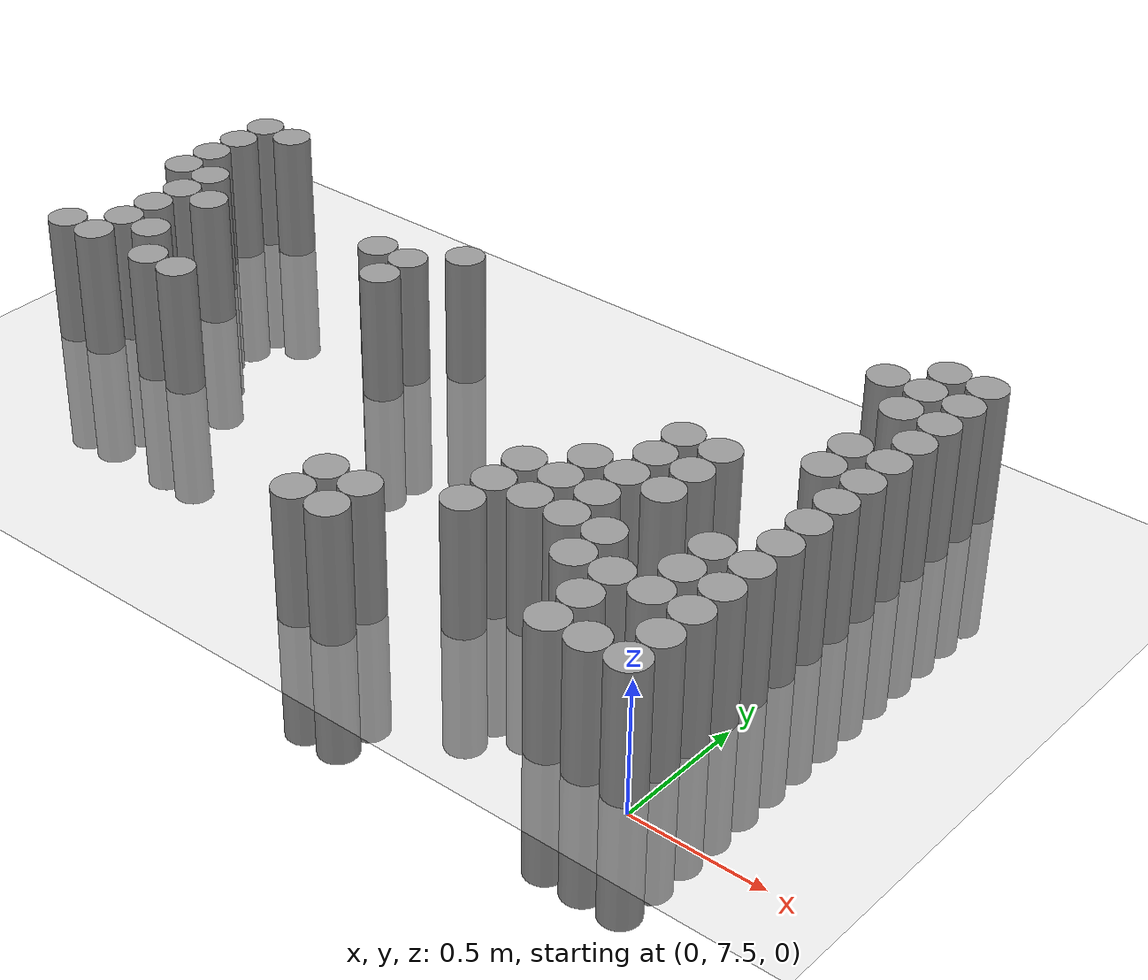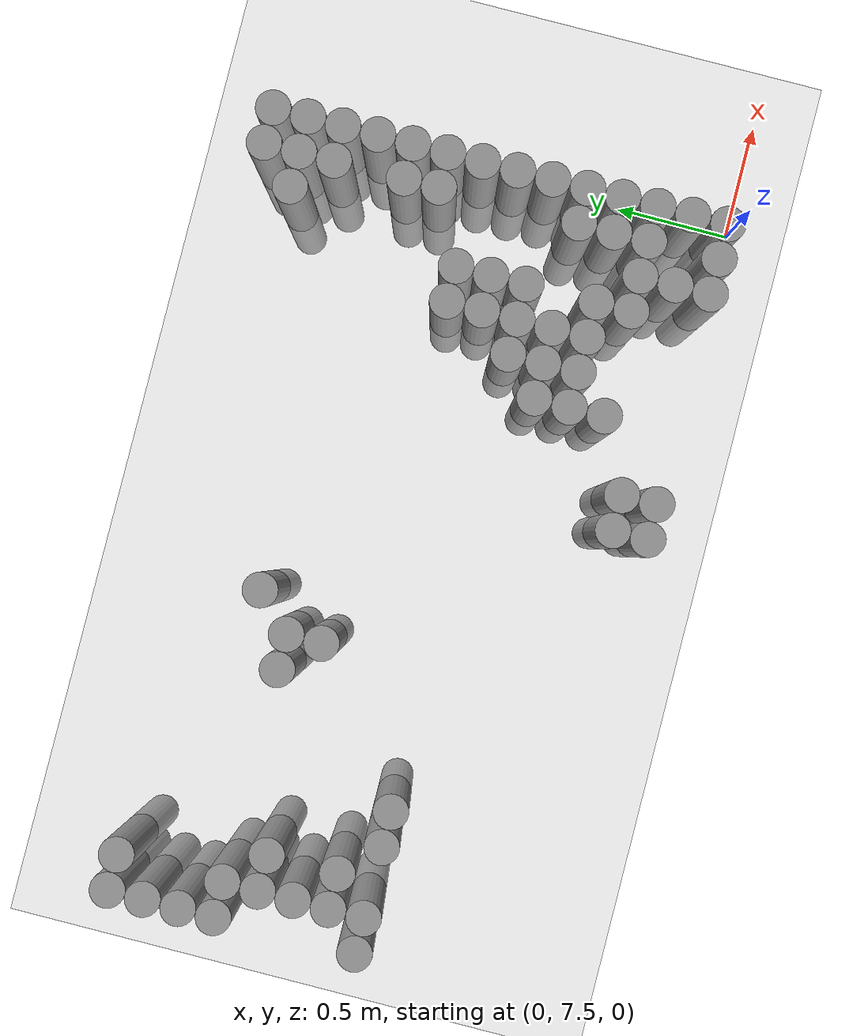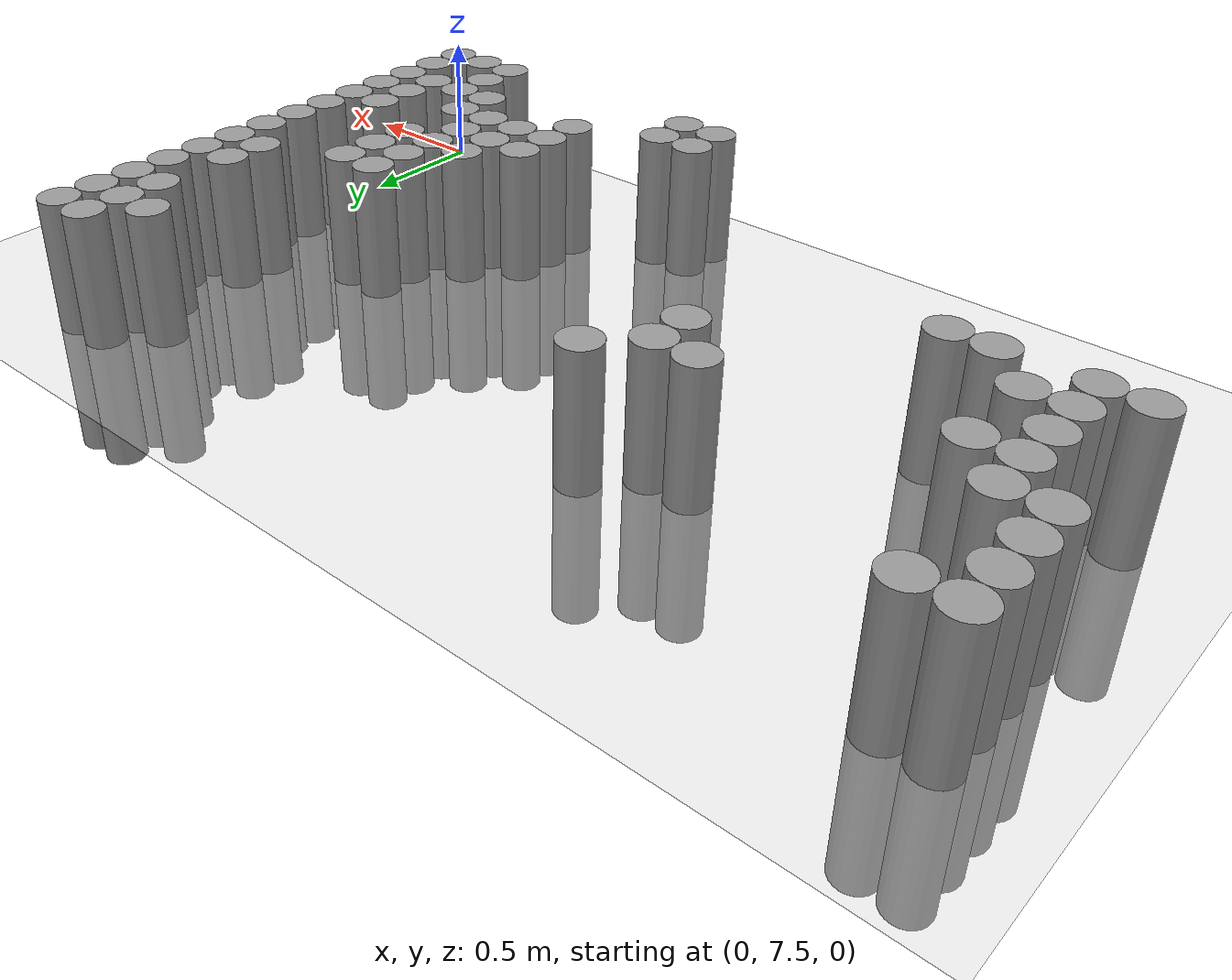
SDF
<sdf version="1.6">
 <world name="default">
  <model name="ground_plane">
   <static>1</static>
   <link name="link">
    <collision name="collision">
     <geometry><plane><normal>0 0 1</normal><size>100 100</size></plane></geometry>
     <surface><friction><ode><mu>100</mu><mu2>50</mu2></ode></friction></surface>
    </collision>
    <visual name="visual">
     <cast_shadows>0</cast_shadows>
     <geometry><plane><normal>0 0 1</normal><size>100 100</size></plane></geometry>
     <material>
      <script><uri>file://media/materials/scripts/gazebo.material</uri><name>Gazebo/Grey</name></script>
     </material>
    </visual>
   </link>
  </model>
  <model name="unit_cylinder_183">
   <pose>-3.375000 8.325000 0.000000 0.000000 0.000000 0.000000</pose>
   <link name="link">
    <inertial>
     <mass>1</mass>
     <inertia><ixx>0.145833</ixx><ixy>0</ixy><ixz>0</ixz><iyy>0.145833</iyy><iyz>0</iyz><izz>0.125</izz></inertia>
    </inertial>
    <collision name="collision">
     <geometry><cylinder><radius>0.075000</radius><length>1</length></cylinder></geometry>
    </collision>
    <visual name="visual">
     <geometry><cylinder><radius>0.075000</radius><length>1</length></cylinder></geometry>
     <material>
      <script><name>Gazebo/Grey</name><uri>file://media/materials/scripts/gazebo.material</uri></script>
     </material>
    </visual>
   </link>
  </model>
  <model name="unit_cylinder_184">
   <pose>-3.375000 8.925000 0.000000 0.000000 0.000000 0.000000</pose>
   <link name="link">
    <inertial>
     <mass>1</mass>
     <inertia><ixx>0.145833</ixx><ixy>0</ixy><ixz>0</ixz><iyy>0.145833</iyy><iyz>0</iyz><izz>0.125</izz></inertia>
    </inertial>
    <collision name="collision">
     <geometry><cylinder><radius>0.075000</radius><length>1</length></cylinder></geometry>
    </collision>
    <visual name="visual">
     <geometry><cylinder><radius>0.075000</radius><length>1</length></cylinder></geometry>
     <material>
      <script><name>Gazebo/Grey</name><uri>file://media/materials/scripts/gazebo.material</uri></script>
     </material>
    </visual>
   </link>
  </model>
  <model name="unit_cylinder_185">
   <pose>-3.375000 9.075000 0.000000 0.000000 0.000000 0.000000</pose>
   <link name="link">
    <inertial>
     <mass>1</mass>
     <inertia><ixx>0.145833</ixx><ixy>0</ixy><ixz>0</ixz><iyy>0.145833</iyy><iyz>0</iyz><izz>0.125</izz></inertia>
    </inertial>
    <collision name="collision">
     <geometry><cylinder><radius>0.075000</radius><length>1</length></cylinder></geometry>
    </collision>
    <visual name="visual">
     <geometry><cylinder><radius>0.075000</radius><length>1</length></cylinder></geometry>
     <material>
      <script><name>Gazebo/Grey</name><uri>file://media/materials/scripts/gazebo.material</uri></script>
     </material>
    </visual>
   </link>
  </model>
  <model name="unit_cylinder_186">
   <pose>-3.375000 9.225000 0.000000 0.000000 0.000000 0.000000</pose>
   <link name="link">
    <inertial>
     <mass>1</mass>
     <inertia><ixx>0.145833</ixx><ixy>0</ixy><ixz>0</ixz><iyy>0.145833</iyy><iyz>0</iyz><izz>0.125</izz></inertia>
    </inertial>
    <collision name="collision">
     <geometry><cylinder><radius>0.075000</radius><length>1</length></cylinder></geometry>
    </collision>
    <visual name="visual">
     <geometry><cylinder><radius>0.075000</radius><length>1</length></cylinder></geometry>
     <material>
      <script><name>Gazebo/Grey</name><uri>file://media/materials/scripts/gazebo.material</uri></script>
     </material>
    </visual>
   </link>
  </model>
  <model name="unit_cylinder_187">
   <pose>-3.375000 9.375000 0.000000 0.000000 0.000000 0.000000</pose>
   <link name="link">
    <inertial>
     <mass>1</mass>
     <inertia><ixx>0.145833</ixx><ixy>0</ixy><ixz>0</ixz><iyy>0.145833</iyy><iyz>0</iyz><izz>0.125</izz></inertia>
    </inertial>
    <collision name="collision">
     <geometry><cylinder><radius>0.075000</radius><length>1</length></cylinder></geometry>
    </collision>
    <visual name="visual">
     <geometry><cylinder><radius>0.075000</radius><length>1</length></cylinder></geometry>
     <material>
      <script><name>Gazebo/Grey</name><uri>file://media/materials/scripts/gazebo.material</uri></script>
     </material>
    </visual>
   </link>
  </model>
  <model name="unit_cylinder_195">
   <pose>-3.225000 8.325000 0.000000 0.000000 0.000000 0.000000</pose>
   <link name="link">
    <inertial>
     <mass>1</mass>
     <inertia><ixx>0.145833</ixx><ixy>0</ixy><ixz>0</ixz><iyy>0.145833</iyy><iyz>0</iyz><izz>0.125</izz></inertia>
    </inertial>
    <collision name="collision">
     <geometry><cylinder><radius>0.075000</radius><length>1</length></cylinder></geometry>
    </collision>
    <visual name="visual">
     <geometry><cylinder><radius>0.075000</radius><length>1</length></cylinder></geometry>
     <material>
      <script><name>Gazebo/Grey</name><uri>file://media/materials/scripts/gazebo.material</uri></script>
     </material>
    </visual>
   </link>
  </model>
  <model name="unit_cylinder_196">
   <pose>-3.225000 8.475000 0.000000 0.000000 0.000000 0.000000</pose>
   <link name="link">
    <inertial>
     <mass>1</mass>
     <inertia><ixx>0.145833</ixx><ixy>0</ixy><ixz>0</ixz><iyy>0.145833</iyy><iyz>0</iyz><izz>0.125</izz></inertia>
    </inertial>
    <collision name="collision">
     <geometry><cylinder><radius>0.075000</radius><length>1</length></cylinder></geometry>
    </collision>
    <visual name="visual">
     <geometry><cylinder><radius>0.075000</radius><length>1</length></cylinder></geometry>
     <material>
      <script><name>Gazebo/Grey</name><uri>file://media/materials/scripts/gazebo.material</uri></script>
     </material>
    </visual>
   </link>
  </model>
  <model name="unit_cylinder_197">
   <pose>-3.225000 8.625000 0.000000 0.000000 0.000000 0.000000</pose>
   <link name="link">
    <inertial>
     <mass>1</mass>
     <inertia><ixx>0.145833</ixx><ixy>0</ixy><ixz>0</ixz><iyy>0.145833</iyy><iyz>0</iyz><izz>0.125</izz></inertia>
    </inertial>
    <collision name="collision">
     <geometry><cylinder><radius>0.075000</radius><length>1</length></cylinder></geometry>
    </collision>
    <visual name="visual">
     <geometry><cylinder><radius>0.075000</radius><length>1</length></cylinder></geometry>
     <material>
      <script><name>Gazebo/Grey</name><uri>file://media/materials/scripts/gazebo.material</uri></script>
     </material>
    </visual>
   </link>
  </model>
  <model name="unit_cylinder_198">
   <pose>-3.225000 8.775000 0.000000 0.000000 0.000000 0.000000</pose>
   <link name="link">
    <inertial>
     <mass>1</mass>
     <inertia><ixx>0.145833</ixx><ixy>0</ixy><ixz>0</ixz><iyy>0.145833</iyy><iyz>0</iyz><izz>0.125</izz></inertia>
    </inertial>
    <collision name="collision">
     <geometry><cylinder><radius>0.075000</radius><length>1</length></cylinder></geometry>
    </collision>
    <visual name="visual">
     <geometry><cylinder><radius>0.075000</radius><length>1</length></cylinder></geometry>
     <material>
      <script><name>Gazebo/Grey</name><uri>file://media/materials/scripts/gazebo.material</uri></script>
     </material>
    </visual>
   </link>
  </model>
  <model name="unit_cylinder_199">
   <pose>-3.225000 8.925000 0.000000 0.000000 0.000000 0.000000</pose>
   <link name="link">
    <inertial>
     <mass>1</mass>
     <inertia><ixx>0.145833</ixx><ixy>0</ixy><ixz>0</ixz><iyy>0.145833</iyy><iyz>0</iyz><izz>0.125</izz></inertia>
    </inertial>
    <collision name="collision">
     <geometry><cylinder><radius>0.075000</radius><length>1</length></cylinder></geometry>
    </collision>
    <visual name="visual">
     <geometry><cylinder><radius>0.075000</radius><length>1</length></cylinder></geometry>
     <material>
      <script><name>Gazebo/Grey</name><uri>file://media/materials/scripts/gazebo.material</uri></script>
     </material>
    </visual>
   </link>
  </model>
  <model name="unit_cylinder_200">
   <pose>-3.225000 9.375000 0.000000 0.000000 0.000000 0.000000</pose>
   <link name="link">
    <inertial>
     <mass>1</mass>
     <inertia><ixx>0.145833</ixx><ixy>0</ixy><ixz>0</ixz><iyy>0.145833</iyy><iyz>0</iyz><izz>0.125</izz></inertia>
    </inertial>
    <collision name="collision">
     <geometry><cylinder><radius>0.075000</radius><length>1</length></cylinder></geometry>
    </collision>
    <visual name="visual">
     <geometry><cylinder><radius>0.075000</radius><length>1</length></cylinder></geometry>
     <material>
      <script><name>Gazebo/Grey</name><uri>file://media/materials/scripts/gazebo.material</uri></script>
     </material>
    </visual>
   </link>
  </model>
  <model name="unit_cylinder_209">
   <pose>-3.075000 8.475000 0.000000 0.000000 0.000000 0.000000</pose>
   <link name="link">
    <inertial>
     <mass>1</mass>
     <inertia><ixx>0.145833</ixx><ixy>0</ixy><ixz>0</ixz><iyy>0.145833</iyy><iyz>0</iyz><izz>0.125</izz></inertia>
    </inertial>
    <collision name="collision">
     <geometry><cylinder><radius>0.075000</radius><length>1</length></cylinder></geometry>
    </collision>
    <visual name="visual">
     <geometry><cylinder><radius>0.075000</radius><length>1</length></cylinder></geometry>
     <material>
      <script><name>Gazebo/Grey</name><uri>file://media/materials/scripts/gazebo.material</uri></script>
     </material>
    </visual>
   </link>
  </model>
  <model name="unit_cylinder_210">
   <pose>-3.075000 8.775000 0.000000 0.000000 0.000000 0.000000</pose>
   <link name="link">
    <inertial>
     <mass>1</mass>
     <inertia><ixx>0.145833</ixx><ixy>0</ixy><ixz>0</ixz><iyy>0.145833</iyy><iyz>0</iyz><izz>0.125</izz></inertia>
    </inertial>
    <collision name="collision">
     <geometry><cylinder><radius>0.075000</radius><length>1</length></cylinder></geometry>
    </collision>
    <visual name="visual">
     <geometry><cylinder><radius>0.075000</radius><length>1</length></cylinder></geometry>
     <material>
      <script><name>Gazebo/Grey</name><uri>file://media/materials/scripts/gazebo.material</uri></script>
     </material>
    </visual>
   </link>
  </model>
  <model name="unit_cylinder_217">
   <pose>-2.925000 8.325000 0.000000 0.000000 0.000000 0.000000</pose>
   <link name="link">
    <inertial>
     <mass>1</mass>
     <inertia><ixx>0.145833</ixx><ixy>0</ixy><ixz>0</ixz><iyy>0.145833</iyy><iyz>0</iyz><izz>0.125</izz></inertia>
    </inertial>
    <collision name="collision">
     <geometry><cylinder><radius>0.075000</radius><length>1</length></cylinder></geometry>
    </collision>
    <visual name="visual">
     <geometry><cylinder><radius>0.075000</radius><length>1</length></cylinder></geometry>
     <material>
      <script><name>Gazebo/Grey</name><uri>file://media/materials/scripts/gazebo.material</uri></script>
     </material>
    </visual>
   </link>
  </model>
  <model name="unit_cylinder_224">
   <pose>-2.775000 8.325000 0.000000 0.000000 0.000000 0.000000</pose>
   <link name="link">
    <inertial>
     <mass>1</mass>
     <inertia><ixx>0.145833</ixx><ixy>0</ixy><ixz>0</ixz><iyy>0.145833</iyy><iyz>0</iyz><izz>0.125</izz></inertia>
    </inertial>
    <collision name="collision">
     <geometry><cylinder><radius>0.075000</radius><length>1</length></cylinder></geometry>
    </collision>
    <visual name="visual">
     <geometry><cylinder><radius>0.075000</radius><length>1</length></cylinder></geometry>
     <material>
      <script><name>Gazebo/Grey</name><uri>file://media/materials/scripts/gazebo.material</uri></script>
     </material>
    </visual>
   </link>
  </model>
  <model name="unit_cylinder_235">
   <pose>-2.325000 8.925000 0.000000 0.000000 0.000000 0.000000</pose>
   <link name="link">
    <inertial>
     <mass>1</mass>
     <inertia><ixx>0.145833</ixx><ixy>0</ixy><ixz>0</ixz><iyy>0.145833</iyy><iyz>0</iyz><izz>0.125</izz></inertia>
    </inertial>
    <collision name="collision">
     <geometry><cylinder><radius>0.075000</radius><length>1</length></cylinder></geometry>
    </collision>
    <visual name="visual">
     <geometry><cylinder><radius>0.075000</radius><length>1</length></cylinder></geometry>
     <material>
      <script><name>Gazebo/Grey</name><uri>file://media/materials/scripts/gazebo.material</uri></script>
     </material>
    </visual>
   </link>
  </model>
  <model name="unit_cylinder_241">
   <pose>-2.175000 8.775000 0.000000 0.000000 0.000000 0.000000</pose>
   <link name="link">
    <inertial>
     <mass>1</mass>
     <inertia><ixx>0.145833</ixx><ixy>0</ixy><ixz>0</ixz><iyy>0.145833</iyy><iyz>0</iyz><izz>0.125</izz></inertia>
    </inertial>
    <collision name="collision">
     <geometry><cylinder><radius>0.075000</radius><length>1</length></cylinder></geometry>
    </collision>
    <visual name="visual">
     <geometry><cylinder><radius>0.075000</radius><length>1</length></cylinder></geometry>
     <material>
      <script><name>Gazebo/Grey</name><uri>file://media/materials/scripts/gazebo.material</uri></script>
     </material>
    </visual>
   </link>
  </model>
  <model name="unit_cylinder_242">
   <pose>-2.175000 8.925000 0.000000 0.000000 0.000000 0.000000</pose>
   <link name="link">
    <inertial>
     <mass>1</mass>
     <inertia><ixx>0.145833</ixx><ixy>0</ixy><ixz>0</ixz><iyy>0.145833</iyy><iyz>0</iyz><izz>0.125</izz></inertia>
    </inertial>
    <collision name="collision">
     <geometry><cylinder><radius>0.075000</radius><length>1</length></cylinder></geometry>
    </collision>
    <visual name="visual">
     <geometry><cylinder><radius>0.075000</radius><length>1</length></cylinder></geometry>
     <material>
      <script><name>Gazebo/Grey</name><uri>file://media/materials/scripts/gazebo.material</uri></script>
     </material>
    </visual>
   </link>
  </model>
  <model name="unit_cylinder_244">
   <pose>-2.025000 9.075000 0.000000 0.000000 0.000000 0.000000</pose>
   <link name="link">
    <inertial>
     <mass>1</mass>
     <inertia><ixx>0.145833</ixx><ixy>0</ixy><ixz>0</ixz><iyy>0.145833</iyy><iyz>0</iyz><izz>0.125</izz></inertia>
    </inertial>
    <collision name="collision">
     <geometry><cylinder><radius>0.075000</radius><length>1</length></cylinder></geometry>
    </collision>
    <visual name="visual">
     <geometry><cylinder><radius>0.075000</radius><length>1</length></cylinder></geometry>
     <material>
      <script><name>Gazebo/Grey</name><uri>file://media/materials/scripts/gazebo.material</uri></script>
     </material>
    </visual>
   </link>
  </model>
  <model name="unit_cylinder_251">
   <pose>-1.425000 7.575000 0.000000 0.000000 0.000000 0.000000</pose>
   <link name="link">
    <inertial>
     <mass>1</mass>
     <inertia><ixx>0.145833</ixx><ixy>0</ixy><ixz>0</ixz><iyy>0.145833</iyy><iyz>0</iyz><izz>0.125</izz></inertia>
    </inertial>
    <collision name="collision">
     <geometry><cylinder><radius>0.075000</radius><length>1</length></cylinder></geometry>
    </collision>
    <visual name="visual">
     <geometry><cylinder><radius>0.075000</radius><length>1</length></cylinder></geometry>
     <material>
      <script><name>Gazebo/Grey</name><uri>file://media/materials/scripts/gazebo.material</uri></script>
     </material>
    </visual>
   </link>
  </model>
  <model name="unit_cylinder_252">
   <pose>-1.425000 7.725000 0.000000 0.000000 0.000000 0.000000</pose>
   <link name="link">
    <inertial>
     <mass>1</mass>
     <inertia><ixx>0.145833</ixx><ixy>0</ixy><ixz>0</ixz><iyy>0.145833</iyy><iyz>0</iyz><izz>0.125</izz></inertia>
    </inertial>
    <collision name="collision">
     <geometry><cylinder><radius>0.075000</radius><length>1</length></cylinder></geometry>
    </collision>
    <visual name="visual">
     <geometry><cylinder><radius>0.075000</radius><length>1</length></cylinder></geometry>
     <material>
      <script><name>Gazebo/Grey</name><uri>file://media/materials/scripts/gazebo.material</uri></script>
     </material>
    </visual>
   </link>
  </model>
  <model name="unit_cylinder_254">
   <pose>-1.275000 7.575000 0.000000 0.000000 0.000000 0.000000</pose>
   <link name="link">
    <inertial>
     <mass>1</mass>
     <inertia><ixx>0.145833</ixx><ixy>0</ixy><ixz>0</ixz><iyy>0.145833</iyy><iyz>0</iyz><izz>0.125</izz></inertia>
    </inertial>
    <collision name="collision">
     <geometry><cylinder><radius>0.075000</radius><length>1</length></cylinder></geometry>
    </collision>
    <visual name="visual">
     <geometry><cylinder><radius>0.075000</radius><length>1</length></cylinder></geometry>
     <material>
      <script><name>Gazebo/Grey</name><uri>file://media/materials/scripts/gazebo.material</uri></script>
     </material>
    </visual>
   </link>
  </model>
  <model name="unit_cylinder_255">
   <pose>-1.275000 7.725000 0.000000 0.000000 0.000000 0.000000</pose>
   <link name="link">
    <inertial>
     <mass>1</mass>
     <inertia><ixx>0.145833</ixx><ixy>0</ixy><ixz>0</ixz><iyy>0.145833</iyy><iyz>0</iyz><izz>0.125</izz></inertia>
    </inertial>
    <collision name="collision">
     <geometry><cylinder><radius>0.075000</radius><length>1</length></cylinder></geometry>
    </collision>
    <visual name="visual">
     <geometry><cylinder><radius>0.075000</radius><length>1</length></cylinder></geometry>
     <material>
      <script><name>Gazebo/Grey</name><uri>file://media/materials/scripts/gazebo.material</uri></script>
     </material>
    </visual>
   </link>
  </model>
  <model name="unit_cylinder_256">
   <pose>-0.975000 7.875000 0.000000 0.000000 0.000000 0.000000</pose>
   <link name="link">
    <inertial>
     <mass>1</mass>
     <inertia><ixx>0.145833</ixx><ixy>0</ixy><ixz>0</ixz><iyy>0.145833</iyy><iyz>0</iyz><izz>0.125</izz></inertia>
    </inertial>
    <collision name="collision">
     <geometry><cylinder><radius>0.075000</radius><length>1</length></cylinder></geometry>
    </collision>
    <visual name="visual">
     <geometry><cylinder><radius>0.075000</radius><length>1</length></cylinder></geometry>
     <material>
      <script><name>Gazebo/Grey</name><uri>file://media/materials/scripts/gazebo.material</uri></script>
     </material>
    </visual>
   </link>
  </model>
  <model name="unit_cylinder_257">
   <pose>-0.975000 8.025000 0.000000 0.000000 0.000000 0.000000</pose>
   <link name="link">
    <inertial>
     <mass>1</mass>
     <inertia><ixx>0.145833</ixx><ixy>0</ixy><ixz>0</ixz><iyy>0.145833</iyy><iyz>0</iyz><izz>0.125</izz></inertia>
    </inertial>
    <collision name="collision">
     <geometry><cylinder><radius>0.075000</radius><length>1</length></cylinder></geometry>
    </collision>
    <visual name="visual">
     <geometry><cylinder><radius>0.075000</radius><length>1</length></cylinder></geometry>
     <material>
      <script><name>Gazebo/Grey</name><uri>file://media/materials/scripts/gazebo.material</uri></script>
     </material>
    </visual>
   </link>
  </model>
  <model name="unit_cylinder_258">
   <pose>-0.975000 8.175000 0.000000 0.000000 0.000000 0.000000</pose>
   <link name="link">
    <inertial>
     <mass>1</mass>
     <inertia><ixx>0.145833</ixx><ixy>0</ixy><ixz>0</ixz><iyy>0.145833</iyy><iyz>0</iyz><izz>0.125</izz></inertia>
    </inertial>
    <collision name="collision">
     <geometry><cylinder><radius>0.075000</radius><length>1</length></cylinder></geometry>
    </collision>
    <visual name="visual">
     <geometry><cylinder><radius>0.075000</radius><length>1</length></cylinder></geometry>
     <material>
      <script><name>Gazebo/Grey</name><uri>file://media/materials/scripts/gazebo.material</uri></script>
     </material>
    </visual>
   </link>
  </model>
  <model name="unit_cylinder_259">
   <pose>-0.825000 8.025000 0.000000 0.000000 0.000000 0.000000</pose>
   <link name="link">
    <inertial>
     <mass>1</mass>
     <inertia><ixx>0.145833</ixx><ixy>0</ixy><ixz>0</ixz><iyy>0.145833</iyy><iyz>0</iyz><izz>0.125</izz></inertia>
    </inertial>
    <collision name="collision">
     <geometry><cylinder><radius>0.075000</radius><length>1</length></cylinder></geometry>
    </collision>
    <visual name="visual">
     <geometry><cylinder><radius>0.075000</radius><length>1</length></cylinder></geometry>
     <material>
      <script><name>Gazebo/Grey</name><uri>file://media/materials/scripts/gazebo.material</uri></script>
     </material>
    </visual>
   </link>
  </model>
  <model name="unit_cylinder_260">
   <pose>-0.825000 8.175000 0.000000 0.000000 0.000000 0.000000</pose>
   <link name="link">
    <inertial>
     <mass>1</mass>
     <inertia><ixx>0.145833</ixx><ixy>0</ixy><ixz>0</ixz><iyy>0.145833</iyy><iyz>0</iyz><izz>0.125</izz></inertia>
    </inertial>
    <collision name="collision">
     <geometry><cylinder><radius>0.075000</radius><length>1</length></cylinder></geometry>
    </collision>
    <visual name="visual">
     <geometry><cylinder><radius>0.075000</radius><length>1</length></cylinder></geometry>
     <material>
      <script><name>Gazebo/Grey</name><uri>file://media/materials/scripts/gazebo.material</uri></script>
     </material>
    </visual>
   </link>
  </model>
  <model name="unit_cylinder_261">
   <pose>-0.825000 8.325000 0.000000 0.000000 0.000000 0.000000</pose>
   <link name="link">
    <inertial>
     <mass>1</mass>
     <inertia><ixx>0.145833</ixx><ixy>0</ixy><ixz>0</ixz><iyy>0.145833</iyy><iyz>0</iyz><izz>0.125</izz></inertia>
    </inertial>
    <collision name="collision">
     <geometry><cylinder><radius>0.075000</radius><length>1</length></cylinder></geometry>
    </collision>
    <visual name="visual">
     <geometry><cylinder><radius>0.075000</radius><length>1</length></cylinder></geometry>
     <material>
      <script><name>Gazebo/Grey</name><uri>file://media/materials/scripts/gazebo.material</uri></script>
     </material>
    </visual>
   </link>
  </model>
  <model name="unit_cylinder_262">
   <pose>-0.675000 8.025000 0.000000 0.000000 0.000000 0.000000</pose>
   <link name="link">
    <inertial>
     <mass>1</mass>
     <inertia><ixx>0.145833</ixx><ixy>0</ixy><ixz>0</ixz><iyy>0.145833</iyy><iyz>0</iyz><izz>0.125</izz></inertia>
    </inertial>
    <collision name="collision">
     <geometry><cylinder><radius>0.075000</radius><length>1</length></cylinder></geometry>
    </collision>
    <visual name="visual">
     <geometry><cylinder><radius>0.075000</radius><length>1</length></cylinder></geometry>
     <material>
      <script><name>Gazebo/Grey</name><uri>file://media/materials/scripts/gazebo.material</uri></script>
     </material>
    </visual>
   </link>
  </model>
  <model name="unit_cylinder_263">
   <pose>-0.675000 8.175000 0.000000 0.000000 0.000000 0.000000</pose>
   <link name="link">
    <inertial>
     <mass>1</mass>
     <inertia><ixx>0.145833</ixx><ixy>0</ixy><ixz>0</ixz><iyy>0.145833</iyy><iyz>0</iyz><izz>0.125</izz></inertia>
    </inertial>
    <collision name="collision">
     <geometry><cylinder><radius>0.075000</radius><length>1</length></cylinder></geometry>
    </collision>
    <visual name="visual">
     <geometry><cylinder><radius>0.075000</radius><length>1</length></cylinder></geometry>
     <material>
      <script><name>Gazebo/Grey</name><uri>file://media/materials/scripts/gazebo.material</uri></script>
     </material>
    </visual>
   </link>
  </model>
  <model name="unit_cylinder_264">
   <pose>-0.675000 8.325000 0.000000 0.000000 0.000000 0.000000</pose>
   <link name="link">
    <inertial>
     <mass>1</mass>
     <inertia><ixx>0.145833</ixx><ixy>0</ixy><ixz>0</ixz><iyy>0.145833</iyy><iyz>0</iyz><izz>0.125</izz></inertia>
    </inertial>
    <collision name="collision">
     <geometry><cylinder><radius>0.075000</radius><length>1</length></cylinder></geometry>
    </collision>
    <visual name="visual">
     <geometry><cylinder><radius>0.075000</radius><length>1</length></cylinder></geometry>
     <material>
      <script><name>Gazebo/Grey</name><uri>file://media/materials/scripts/gazebo.material</uri></script>
     </material>
    </visual>
   </link>
  </model>
  <model name="unit_cylinder_265">
   <pose>-0.675000 8.475000 0.000000 0.000000 0.000000 0.000000</pose>
   <link name="link">
    <inertial>
     <mass>1</mass>
     <inertia><ixx>0.145833</ixx><ixy>0</ixy><ixz>0</ixz><iyy>0.145833</iyy><iyz>0</iyz><izz>0.125</izz></inertia>
    </inertial>
    <collision name="collision">
     <geometry><cylinder><radius>0.075000</radius><length>1</length></cylinder></geometry>
    </collision>
    <visual name="visual">
     <geometry><cylinder><radius>0.075000</radius><length>1</length></cylinder></geometry>
     <material>
      <script><name>Gazebo/Grey</name><uri>file://media/materials/scripts/gazebo.material</uri></script>
     </material>
    </visual>
   </link>
  </model>
  <model name="unit_cylinder_266">
   <pose>-0.675000 8.625000 0.000000 0.000000 0.000000 0.000000</pose>
   <link name="link">
    <inertial>
     <mass>1</mass>
     <inertia><ixx>0.145833</ixx><ixy>0</ixy><ixz>0</ixz><iyy>0.145833</iyy><iyz>0</iyz><izz>0.125</izz></inertia>
    </inertial>
    <collision name="collision">
     <geometry><cylinder><radius>0.075000</radius><length>1</length></cylinder></geometry>
    </collision>
    <visual name="visual">
     <geometry><cylinder><radius>0.075000</radius><length>1</length></cylinder></geometry>
     <material>
      <script><name>Gazebo/Grey</name><uri>file://media/materials/scripts/gazebo.material</uri></script>
     </material>
    </visual>
   </link>
  </model>
  <model name="unit_cylinder_268">
   <pose>-0.525000 7.875000 0.000000 0.000000 0.000000 0.000000</pose>
   <link name="link">
    <inertial>
     <mass>1</mass>
     <inertia><ixx>0.145833</ixx><ixy>0</ixy><ixz>0</ixz><iyy>0.145833</iyy><iyz>0</iyz><izz>0.125</izz></inertia>
    </inertial>
    <collision name="collision">
     <geometry><cylinder><radius>0.075000</radius><length>1</length></cylinder></geometry>
    </collision>
    <visual name="visual">
     <geometry><cylinder><radius>0.075000</radius><length>1</length></cylinder></geometry>
     <material>
      <script><name>Gazebo/Grey</name><uri>file://media/materials/scripts/gazebo.material</uri></script>
     </material>
    </visual>
   </link>
  </model>
  <model name="unit_cylinder_269">
   <pose>-0.525000 8.025000 0.000000 0.000000 0.000000 0.000000</pose>
   <link name="link">
    <inertial>
     <mass>1</mass>
     <inertia><ixx>0.145833</ixx><ixy>0</ixy><ixz>0</ixz><iyy>0.145833</iyy><iyz>0</iyz><izz>0.125</izz></inertia>
    </inertial>
    <collision name="collision">
     <geometry><cylinder><radius>0.075000</radius><length>1</length></cylinder></geometry>
    </collision>
    <visual name="visual">
     <geometry><cylinder><radius>0.075000</radius><length>1</length></cylinder></geometry>
     <material>
      <script><name>Gazebo/Grey</name><uri>file://media/materials/scripts/gazebo.material</uri></script>
     </material>
    </visual>
   </link>
  </model>
  <model name="unit_cylinder_270">
   <pose>-0.525000 8.325000 0.000000 0.000000 0.000000 0.000000</pose>
   <link name="link">
    <inertial>
     <mass>1</mass>
     <inertia><ixx>0.145833</ixx><ixy>0</ixy><ixz>0</ixz><iyy>0.145833</iyy><iyz>0</iyz><izz>0.125</izz></inertia>
    </inertial>
    <collision name="collision">
     <geometry><cylinder><radius>0.075000</radius><length>1</length></cylinder></geometry>
    </collision>
    <visual name="visual">
     <geometry><cylinder><radius>0.075000</radius><length>1</length></cylinder></geometry>
     <material>
      <script><name>Gazebo/Grey</name><uri>file://media/materials/scripts/gazebo.material</uri></script>
     </material>
    </visual>
   </link>
  </model>
  <model name="unit_cylinder_271">
   <pose>-0.525000 8.475000 0.000000 0.000000 0.000000 0.000000</pose>
   <link name="link">
    <inertial>
     <mass>1</mass>
     <inertia><ixx>0.145833</ixx><ixy>0</ixy><ixz>0</ixz><iyy>0.145833</iyy><iyz>0</iyz><izz>0.125</izz></inertia>
    </inertial>
    <collision name="collision">
     <geometry><cylinder><radius>0.075000</radius><length>1</length></cylinder></geometry>
    </collision>
    <visual name="visual">
     <geometry><cylinder><radius>0.075000</radius><length>1</length></cylinder></geometry>
     <material>
      <script><name>Gazebo/Grey</name><uri>file://media/materials/scripts/gazebo.material</uri></script>
     </material>
    </visual>
   </link>
  </model>
  <model name="unit_cylinder_272">
   <pose>-0.525000 8.625000 0.000000 0.000000 0.000000 0.000000</pose>
   <link name="link">
    <inertial>
     <mass>1</mass>
     <inertia><ixx>0.145833</ixx><ixy>0</ixy><ixz>0</ixz><iyy>0.145833</iyy><iyz>0</iyz><izz>0.125</izz></inertia>
    </inertial>
    <collision name="collision">
     <geometry><cylinder><radius>0.075000</radius><length>1</length></cylinder></geometry>
    </collision>
    <visual name="visual">
     <geometry><cylinder><radius>0.075000</radius><length>1</length></cylinder></geometry>
     <material>
      <script><name>Gazebo/Grey</name><uri>file://media/materials/scripts/gazebo.material</uri></script>
     </material>
    </visual>
   </link>
  </model>
  <model name="unit_cylinder_278">
   <pose>-0.375000 7.575000 0.000000 0.000000 0.000000 0.000000</pose>
   <link name="link">
    <inertial>
     <mass>1</mass>
     <inertia><ixx>0.145833</ixx><ixy>0</ixy><ixz>0</ixz><iyy>0.145833</iyy><iyz>0</iyz><izz>0.125</izz></inertia>
    </inertial>
    <collision name="collision">
     <geometry><cylinder><radius>0.075000</radius><length>1</length></cylinder></geometry>
    </collision>
    <visual name="visual">
     <geometry><cylinder><radius>0.075000</radius><length>1</length></cylinder></geometry>
     <material>
      <script><name>Gazebo/Grey</name><uri>file://media/materials/scripts/gazebo.material</uri></script>
     </material>
    </visual>
   </link>
  </model>
  <model name="unit_cylinder_279">
   <pose>-0.375000 7.725000 0.000000 0.000000 0.000000 0.000000</pose>
   <link name="link">
    <inertial>
     <mass>1</mass>
     <inertia><ixx>0.145833</ixx><ixy>0</ixy><ixz>0</ixz><iyy>0.145833</iyy><iyz>0</iyz><izz>0.125</izz></inertia>
    </inertial>
    <collision name="collision">
     <geometry><cylinder><radius>0.075000</radius><length>1</length></cylinder></geometry>
    </collision>
    <visual name="visual">
     <geometry><cylinder><radius>0.075000</radius><length>1</length></cylinder></geometry>
     <material>
      <script><name>Gazebo/Grey</name><uri>file://media/materials/scripts/gazebo.material</uri></script>
     </material>
    </visual>
   </link>
  </model>
  <model name="unit_cylinder_280">
   <pose>-0.375000 7.875000 0.000000 0.000000 0.000000 0.000000</pose>
   <link name="link">
    <inertial>
     <mass>1</mass>
     <inertia><ixx>0.145833</ixx><ixy>0</ixy><ixz>0</ixz><iyy>0.145833</iyy><iyz>0</iyz><izz>0.125</izz></inertia>
    </inertial>
    <collision name="collision">
     <geometry><cylinder><radius>0.075000</radius><length>1</length></cylinder></geometry>
    </collision>
    <visual name="visual">
     <geometry><cylinder><radius>0.075000</radius><length>1</length></cylinder></geometry>
     <material>
      <script><name>Gazebo/Grey</name><uri>file://media/materials/scripts/gazebo.material</uri></script>
     </material>
    </visual>
   </link>
  </model>
  <model name="unit_cylinder_281">
   <pose>-0.375000 9.375000 0.000000 0.000000 0.000000 0.000000</pose>
   <link name="link">
    <inertial>
     <mass>1</mass>
     <inertia><ixx>0.145833</ixx><ixy>0</ixy><ixz>0</ixz><iyy>0.145833</iyy><iyz>0</iyz><izz>0.125</izz></inertia>
    </inertial>
    <collision name="collision">
     <geometry><cylinder><radius>0.075000</radius><length>1</length></cylinder></geometry>
    </collision>
    <visual name="visual">
     <geometry><cylinder><radius>0.075000</radius><length>1</length></cylinder></geometry>
     <material>
      <script><name>Gazebo/Grey</name><uri>file://media/materials/scripts/gazebo.material</uri></script>
     </material>
    </visual>
   </link>
  </model>
  <model name="unit_cylinder_290">
   <pose>-0.225000 7.575000 0.000000 0.000000 0.000000 0.000000</pose>
   <link name="link">
    <inertial>
     <mass>1</mass>
     <inertia><ixx>0.145833</ixx><ixy>0</ixy><ixz>0</ixz><iyy>0.145833</iyy><iyz>0</iyz><izz>0.125</izz></inertia>
    </inertial>
    <collision name="collision">
     <geometry><cylinder><radius>0.075000</radius><length>1</length></cylinder></geometry>
    </collision>
    <visual name="visual">
     <geometry><cylinder><radius>0.075000</radius><length>1</length></cylinder></geometry>
     <material>
      <script><name>Gazebo/Grey</name><uri>file://media/materials/scripts/gazebo.material</uri></script>
     </material>
    </visual>
   </link>
  </model>
  <model name="unit_cylinder_291">
   <pose>-0.225000 7.875000 0.000000 0.000000 0.000000 0.000000</pose>
   <link name="link">
    <inertial>
     <mass>1</mass>
     <inertia><ixx>0.145833</ixx><ixy>0</ixy><ixz>0</ixz><iyy>0.145833</iyy><iyz>0</iyz><izz>0.125</izz></inertia>
    </inertial>
    <collision name="collision">
     <geometry><cylinder><radius>0.075000</radius><length>1</length></cylinder></geometry>
    </collision>
    <visual name="visual">
     <geometry><cylinder><radius>0.075000</radius><length>1</length></cylinder></geometry>
     <material>
      <script><name>Gazebo/Grey</name><uri>file://media/materials/scripts/gazebo.material</uri></script>
     </material>
    </visual>
   </link>
  </model>
  <model name="unit_cylinder_292">
   <pose>-0.225000 8.025000 0.000000 0.000000 0.000000 0.000000</pose>
   <link name="link">
    <inertial>
     <mass>1</mass>
     <inertia><ixx>0.145833</ixx><ixy>0</ixy><ixz>0</ixz><iyy>0.145833</iyy><iyz>0</iyz><izz>0.125</izz></inertia>
    </inertial>
    <collision name="collision">
     <geometry><cylinder><radius>0.075000</radius><length>1</length></cylinder></geometry>
    </collision>
    <visual name="visual">
     <geometry><cylinder><radius>0.075000</radius><length>1</length></cylinder></geometry>
     <material>
      <script><name>Gazebo/Grey</name><uri>file://media/materials/scripts/gazebo.material</uri></script>
     </material>
    </visual>
   </link>
  </model>
  <model name="unit_cylinder_293">
   <pose>-0.225000 8.175000 0.000000 0.000000 0.000000 0.000000</pose>
   <link name="link">
    <inertial>
     <mass>1</mass>
     <inertia><ixx>0.145833</ixx><ixy>0</ixy><ixz>0</ixz><iyy>0.145833</iyy><iyz>0</iyz><izz>0.125</izz></inertia>
    </inertial>
    <collision name="collision">
     <geometry><cylinder><radius>0.075000</radius><length>1</length></cylinder></geometry>
    </collision>
    <visual name="visual">
     <geometry><cylinder><radius>0.075000</radius><length>1</length></cylinder></geometry>
     <material>
      <script><name>Gazebo/Grey</name><uri>file://media/materials/scripts/gazebo.material</uri></script>
     </material>
    </visual>
   </link>
  </model>
  <model name="unit_cylinder_294">
   <pose>-0.225000 8.775000 0.000000 0.000000 0.000000 0.000000</pose>
   <link name="link">
    <inertial>
     <mass>1</mass>
     <inertia><ixx>0.145833</ixx><ixy>0</ixy><ixz>0</ixz><iyy>0.145833</iyy><iyz>0</iyz><izz>0.125</izz></inertia>
    </inertial>
    <collision name="collision">
     <geometry><cylinder><radius>0.075000</radius><length>1</length></cylinder></geometry>
    </collision>
    <visual name="visual">
     <geometry><cylinder><radius>0.075000</radius><length>1</length></cylinder></geometry>
     <material>
      <script><name>Gazebo/Grey</name><uri>file://media/materials/scripts/gazebo.material</uri></script>
     </material>
    </visual>
   </link>
  </model>
  <model name="unit_cylinder_295">
   <pose>-0.225000 8.925000 0.000000 0.000000 0.000000 0.000000</pose>
   <link name="link">
    <inertial>
     <mass>1</mass>
     <inertia><ixx>0.145833</ixx><ixy>0</ixy><ixz>0</ixz><iyy>0.145833</iyy><iyz>0</iyz><izz>0.125</izz></inertia>
    </inertial>
    <collision name="collision">
     <geometry><cylinder><radius>0.075000</radius><length>1</length></cylinder></geometry>
    </collision>
    <visual name="visual">
     <geometry><cylinder><radius>0.075000</radius><length>1</length></cylinder></geometry>
     <material>
      <script><name>Gazebo/Grey</name><uri>file://media/materials/scripts/gazebo.material</uri></script>
     </material>
    </visual>
   </link>
  </model>
  <model name="unit_cylinder_296">
   <pose>-0.225000 9.225000 0.000000 0.000000 0.000000 0.000000</pose>
   <link name="link">
    <inertial>
     <mass>1</mass>
     <inertia><ixx>0.145833</ixx><ixy>0</ixy><ixz>0</ixz><iyy>0.145833</iyy><iyz>0</iyz><izz>0.125</izz></inertia>
    </inertial>
    <collision name="collision">
     <geometry><cylinder><radius>0.075000</radius><length>1</length></cylinder></geometry>
    </collision>
    <visual name="visual">
     <geometry><cylinder><radius>0.075000</radius><length>1</length></cylinder></geometry>
     <material>
      <script><name>Gazebo/Grey</name><uri>file://media/materials/scripts/gazebo.material</uri></script>
     </material>
    </visual>
   </link>
  </model>
  <model name="unit_cylinder_297">
   <pose>-0.225000 9.375000 0.000000 0.000000 0.000000 0.000000</pose>
   <link name="link">
    <inertial>
     <mass>1</mass>
     <inertia><ixx>0.145833</ixx><ixy>0</ixy><ixz>0</ixz><iyy>0.145833</iyy><iyz>0</iyz><izz>0.125</izz></inertia>
    </inertial>
    <collision name="collision">
     <geometry><cylinder><radius>0.075000</radius><length>1</length></cylinder></geometry>
    </collision>
    <visual name="visual">
     <geometry><cylinder><radius>0.075000</radius><length>1</length></cylinder></geometry>
     <material>
      <script><name>Gazebo/Grey</name><uri>file://media/materials/scripts/gazebo.material</uri></script>
     </material>
    </visual>
   </link>
  </model>
  <model name="unit_cylinder_298">
   <pose>-0.225000 9.525000 0.000000 0.000000 0.000000 0.000000</pose>
   <link name="link">
    <inertial>
     <mass>1</mass>
     <inertia><ixx>0.145833</ixx><ixy>0</ixy><ixz>0</ixz><iyy>0.145833</iyy><iyz>0</iyz><izz>0.125</izz></inertia>
    </inertial>
    <collision name="collision">
     <geometry><cylinder><radius>0.075000</radius><length>1</length></cylinder></geometry>
    </collision>
    <visual name="visual">
     <geometry><cylinder><radius>0.075000</radius><length>1</length></cylinder></geometry>
     <material>
      <script><name>Gazebo/Grey</name><uri>file://media/materials/scripts/gazebo.material</uri></script>
     </material>
    </visual>
   </link>
  </model>
  <model name="unit_cylinder_315">
   <pose>-0.075000 7.575000 0.000000 0.000000 0.000000 0.000000</pose>
   <link name="link">
    <inertial>
     <mass>1</mass>
     <inertia><ixx>0.145833</ixx><ixy>0</ixy><ixz>0</ixz><iyy>0.145833</iyy><iyz>0</iyz><izz>0.125</izz></inertia>
    </inertial>
    <collision name="collision">
     <geometry><cylinder><radius>0.075000</radius><length>1</length></cylinder></geometry>
    </collision>
    <visual name="visual">
     <geometry><cylinder><radius>0.075000</radius><length>1</length></cylinder></geometry>
     <material>
      <script><name>Gazebo/Grey</name><uri>file://media/materials/scripts/gazebo.material</uri></script>
     </material>
    </visual>
   </link>
  </model>
  <model name="unit_cylinder_316">
   <pose>-0.075000 7.725000 0.000000 0.000000 0.000000 0.000000</pose>
   <link name="link">
    <inertial>
     <mass>1</mass>
     <inertia><ixx>0.145833</ixx><ixy>0</ixy><ixz>0</ixz><iyy>0.145833</iyy><iyz>0</iyz><izz>0.125</izz></inertia>
    </inertial>
    <collision name="collision">
     <geometry><cylinder><radius>0.075000</radius><length>1</length></cylinder></geometry>
    </collision>
    <visual name="visual">
     <geometry><cylinder><radius>0.075000</radius><length>1</length></cylinder></geometry>
     <material>
      <script><name>Gazebo/Grey</name><uri>file://media/materials/scripts/gazebo.material</uri></script>
     </material>
    </visual>
   </link>
  </model>
  <model name="unit_cylinder_317">
   <pose>-0.075000 7.875000 0.000000 0.000000 0.000000 0.000000</pose>
   <link name="link">
    <inertial>
     <mass>1</mass>
     <inertia><ixx>0.145833</ixx><ixy>0</ixy><ixz>0</ixz><iyy>0.145833</iyy><iyz>0</iyz><izz>0.125</izz></inertia>
    </inertial>
    <collision name="collision">
     <geometry><cylinder><radius>0.075000</radius><length>1</length></cylinder></geometry>
    </collision>
    <visual name="visual">
     <geometry><cylinder><radius>0.075000</radius><length>1</length></cylinder></geometry>
     <material>
      <script><name>Gazebo/Grey</name><uri>file://media/materials/scripts/gazebo.material</uri></script>
     </material>
    </visual>
   </link>
  </model>
  <model name="unit_cylinder_318">
   <pose>-0.075000 8.025000 0.000000 0.000000 0.000000 0.000000</pose>
   <link name="link">
    <inertial>
     <mass>1</mass>
     <inertia><ixx>0.145833</ixx><ixy>0</ixy><ixz>0</ixz><iyy>0.145833</iyy><iyz>0</iyz><izz>0.125</izz></inertia>
    </inertial>
    <collision name="collision">
     <geometry><cylinder><radius>0.075000</radius><length>1</length></cylinder></geometry>
    </collision>
    <visual name="visual">
     <geometry><cylinder><radius>0.075000</radius><length>1</length></cylinder></geometry>
     <material>
      <script><name>Gazebo/Grey</name><uri>file://media/materials/scripts/gazebo.material</uri></script>
     </material>
    </visual>
   </link>
  </model>
  <model name="unit_cylinder_319">
   <pose>-0.075000 8.175000 0.000000 0.000000 0.000000 0.000000</pose>
   <link name="link">
    <inertial>
     <mass>1</mass>
     <inertia><ixx>0.145833</ixx><ixy>0</ixy><ixz>0</ixz><iyy>0.145833</iyy><iyz>0</iyz><izz>0.125</izz></inertia>
    </inertial>
    <collision name="collision">
     <geometry><cylinder><radius>0.075000</radius><length>1</length></cylinder></geometry>
    </collision>
    <visual name="visual">
     <geometry><cylinder><radius>0.075000</radius><length>1</length></cylinder></geometry>
     <material>
      <script><name>Gazebo/Grey</name><uri>file://media/materials/scripts/gazebo.material</uri></script>
     </material>
    </visual>
   </link>
  </model>
  <model name="unit_cylinder_320">
   <pose>-0.075000 8.325000 0.000000 0.000000 0.000000 0.000000</pose>
   <link name="link">
    <inertial>
     <mass>1</mass>
     <inertia><ixx>0.145833</ixx><ixy>0</ixy><ixz>0</ixz><iyy>0.145833</iyy><iyz>0</iyz><izz>0.125</izz></inertia>
    </inertial>
    <collision name="collision">
     <geometry><cylinder><radius>0.075000</radius><length>1</length></cylinder></geometry>
    </collision>
    <visual name="visual">
     <geometry><cylinder><radius>0.075000</radius><length>1</length></cylinder></geometry>
     <material>
      <script><name>Gazebo/Grey</name><uri>file://media/materials/scripts/gazebo.material</uri></script>
     </material>
    </visual>
   </link>
  </model>
  <model name="unit_cylinder_321">
   <pose>-0.075000 8.475000 0.000000 0.000000 0.000000 0.000000</pose>
   <link name="link">
    <inertial>
     <mass>1</mass>
     <inertia><ixx>0.145833</ixx><ixy>0</ixy><ixz>0</ixz><iyy>0.145833</iyy><iyz>0</iyz><izz>0.125</izz></inertia>
    </inertial>
    <collision name="collision">
     <geometry><cylinder><radius>0.075000</radius><length>1</length></cylinder></geometry>
    </collision>
    <visual name="visual">
     <geometry><cylinder><radius>0.075000</radius><length>1</length></cylinder></geometry>
     <material>
      <script><name>Gazebo/Grey</name><uri>file://media/materials/scripts/gazebo.material</uri></script>
     </material>
    </visual>
   </link>
  </model>
  <model name="unit_cylinder_322">
   <pose>-0.075000 8.625000 0.000000 0.000000 0.000000 0.000000</pose>
   <link name="link">
    <inertial>
     <mass>1</mass>
     <inertia><ixx>0.145833</ixx><ixy>0</ixy><ixz>0</ixz><iyy>0.145833</iyy><iyz>0</iyz><izz>0.125</izz></inertia>
    </inertial>
    <collision name="collision">
     <geometry><cylinder><radius>0.075000</radius><length>1</length></cylinder></geometry>
    </collision>
    <visual name="visual">
     <geometry><cylinder><radius>0.075000</radius><length>1</length></cylinder></geometry>
     <material>
      <script><name>Gazebo/Grey</name><uri>file://media/materials/scripts/gazebo.material</uri></script>
     </material>
    </visual>
   </link>
  </model>
  <model name="unit_cylinder_323">
   <pose>-0.075000 8.775000 0.000000 0.000000 0.000000 0.000000</pose>
   <link name="link">
    <inertial>
     <mass>1</mass>
     <inertia><ixx>0.145833</ixx><ixy>0</ixy><ixz>0</ixz><iyy>0.145833</iyy><iyz>0</iyz><izz>0.125</izz></inertia>
    </inertial>
    <collision name="collision">
     <geometry><cylinder><radius>0.075000</radius><length>1</length></cylinder></geometry>
    </collision>
    <visual name="visual">
     <geometry><cylinder><radius>0.075000</radius><length>1</length></cylinder></geometry>
     <material>
      <script><name>Gazebo/Grey</name><uri>file://media/materials/scripts/gazebo.material</uri></script>
     </material>
    </visual>
   </link>
  </model>
  <model name="unit_cylinder_324">
   <pose>-0.075000 8.925000 0.000000 0.000000 0.000000 0.000000</pose>
   <link name="link">
    <inertial>
     <mass>1</mass>
     <inertia><ixx>0.145833</ixx><ixy>0</ixy><ixz>0</ixz><iyy>0.145833</iyy><iyz>0</iyz><izz>0.125</izz></inertia>
    </inertial>
    <collision name="collision">
     <geometry><cylinder><radius>0.075000</radius><length>1</length></cylinder></geometry>
    </collision>
    <visual name="visual">
     <geometry><cylinder><radius>0.075000</radius><length>1</length></cylinder></geometry>
     <material>
      <script><name>Gazebo/Grey</name><uri>file://media/materials/scripts/gazebo.material</uri></script>
     </material>
    </visual>
   </link>
  </model>
  <model name="unit_cylinder_325">
   <pose>-0.075000 9.075000 0.000000 0.000000 0.000000 0.000000</pose>
   <link name="link">
    <inertial>
     <mass>1</mass>
     <inertia><ixx>0.145833</ixx><ixy>0</ixy><ixz>0</ixz><iyy>0.145833</iyy><iyz>0</iyz><izz>0.125</izz></inertia>
    </inertial>
    <collision name="collision">
     <geometry><cylinder><radius>0.075000</radius><length>1</length></cylinder></geometry>
    </collision>
    <visual name="visual">
     <geometry><cylinder><radius>0.075000</radius><length>1</length></cylinder></geometry>
     <material>
      <script><name>Gazebo/Grey</name><uri>file://media/materials/scripts/gazebo.material</uri></script>
     </material>
    </visual>
   </link>
  </model>
  <model name="unit_cylinder_326">
   <pose>-0.075000 9.225000 0.000000 0.000000 0.000000 0.000000</pose>
   <link name="link">
    <inertial>
     <mass>1</mass>
     <inertia><ixx>0.145833</ixx><ixy>0</ixy><ixz>0</ixz><iyy>0.145833</iyy><iyz>0</iyz><izz>0.125</izz></inertia>
    </inertial>
    <collision name="collision">
     <geometry><cylinder><radius>0.075000</radius><length>1</length></cylinder></geometry>
    </collision>
    <visual name="visual">
     <geometry><cylinder><radius>0.075000</radius><length>1</length></cylinder></geometry>
     <material>
      <script><name>Gazebo/Grey</name><uri>file://media/materials/scripts/gazebo.material</uri></script>
     </material>
    </visual>
   </link>
  </model>
  <model name="unit_cylinder_327">
   <pose>-0.075000 9.375000 0.000000 0.000000 0.000000 0.000000</pose>
   <link name="link">
    <inertial>
     <mass>1</mass>
     <inertia><ixx>0.145833</ixx><ixy>0</ixy><ixz>0</ixz><iyy>0.145833</iyy><iyz>0</iyz><izz>0.125</izz></inertia>
    </inertial>
    <collision name="collision">
     <geometry><cylinder><radius>0.075000</radius><length>1</length></cylinder></geometry>
    </collision>
    <visual name="visual">
     <geometry><cylinder><radius>0.075000</radius><length>1</length></cylinder></geometry>
     <material>
      <script><name>Gazebo/Grey</name><uri>file://media/materials/scripts/gazebo.material</uri></script>
     </material>
    </visual>
   </link>
  </model>
  <model name="unit_cylinder_328">
   <pose>-0.075000 9.525000 0.000000 0.000000 0.000000 0.000000</pose>
   <link name="link">
    <inertial>
     <mass>1</mass>
     <inertia><ixx>0.145833</ixx><ixy>0</ixy><ixz>0</ixz><iyy>0.145833</iyy><iyz>0</iyz><izz>0.125</izz></inertia>
    </inertial>
    <collision name="collision">
     <geometry><cylinder><radius>0.075000</radius><length>1</length></cylinder></geometry>
    </collision>
    <visual name="visual">
     <geometry><cylinder><radius>0.075000</radius><length>1</length></cylinder></geometry>
     <material>
      <script><name>Gazebo/Grey</name><uri>file://media/materials/scripts/gazebo.material</uri></script>
     </material>
    </visual>
   </link>
  </model>
 </world>
</sdf>
